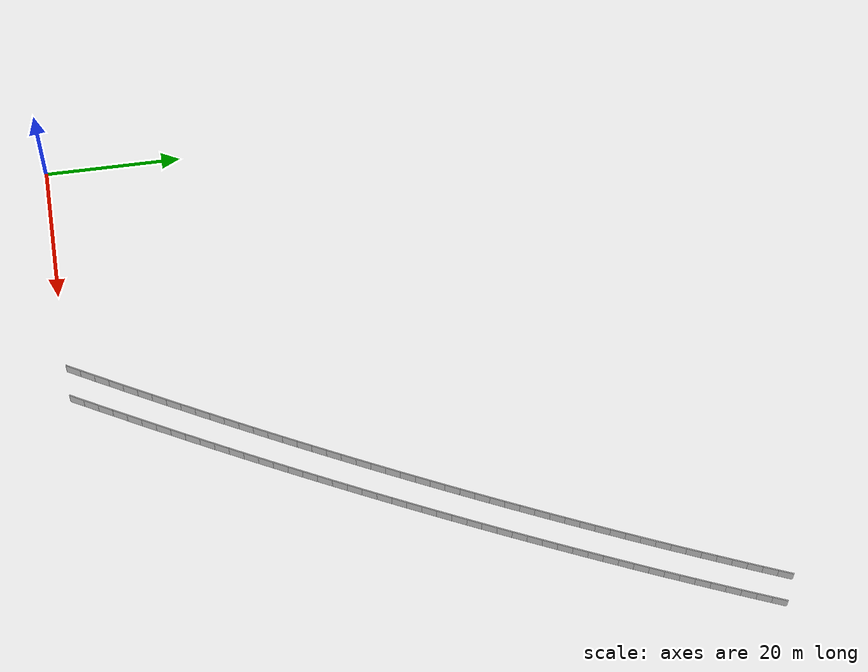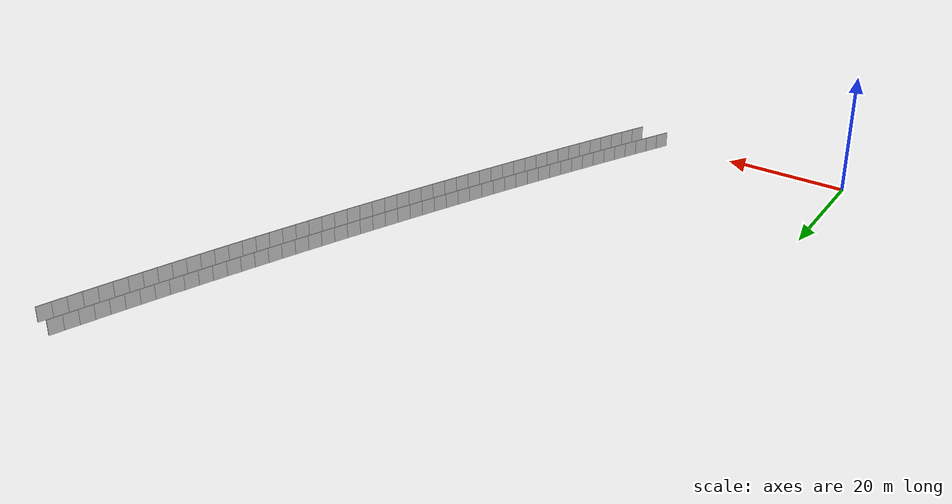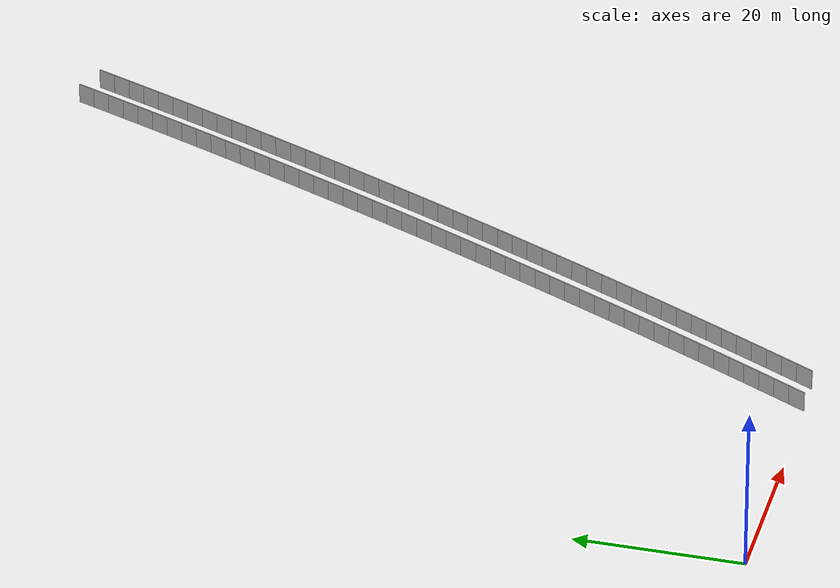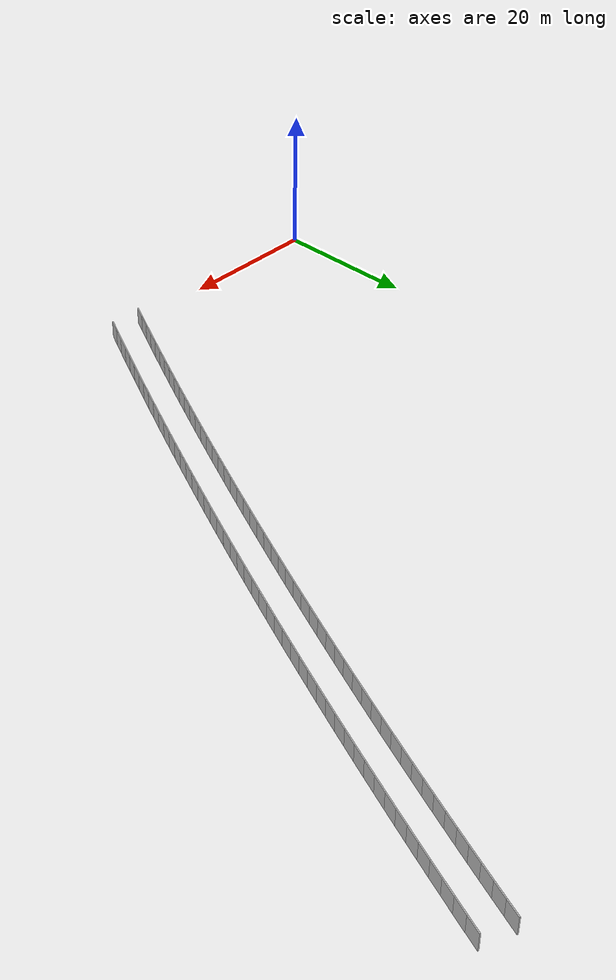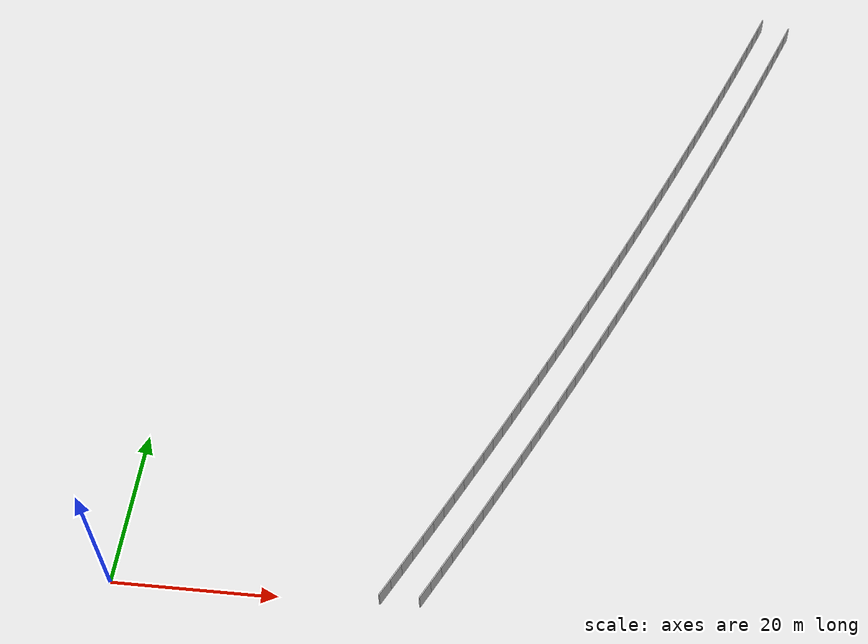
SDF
<sdf version="1.6">
 <model name="sps_2208">
  <static>1</static>
  <allow_auto_disable>0</allow_auto_disable>
  <link name="Wall4387">
   <collision name="collision"><geometry><box><size>2.25457 0.15 2.5</size></box></geometry></collision>
   <visual name="visual">
    <geometry><box><size>2.25457 0.15 2.5</size></box></geometry>
    <transparency>0.0</transparency>
   </visual>
   <pose>37.193 1.31227 1.25 0 -0 1.09524</pose>
  </link>
  <link name="Wall4388">
   <collision name="collision"><geometry><box><size>2.25454 0.15 2.5</size></box></geometry></collision>
   <visual name="visual">
    <geometry><box><size>2.25454 0.15 2.5</size></box></geometry>
    <transparency>0.0</transparency>
   </visual>
   <pose>38.2228 3.31789 1.25 0 -0 1.09763</pose>
  </link>
  <link name="Wall4389">
   <collision name="collision"><geometry><box><size>2.25488 0.15 2.5</size></box></geometry></collision>
   <visual name="visual">
    <geometry><box><size>2.25488 0.15 2.5</size></box></geometry>
    <transparency>0.0</transparency>
   </visual>
   <pose>39.2479 5.32609 1.25 0 -0 1.10002</pose>
  </link>
  <link name="Wall4390">
   <collision name="collision"><geometry><box><size>2.2546 0.15 2.5</size></box></geometry></collision>
   <visual name="visual">
    <geometry><box><size>2.2546 0.15 2.5</size></box></geometry>
    <transparency>0.0</transparency>
   </visual>
   <pose>40.2681 7.33678 1.25 0 -0 1.10241</pose>
  </link>
  <link name="Wall4391">
   <collision name="collision"><geometry><box><size>2.25444 0.15 2.5</size></box></geometry></collision>
   <visual name="visual">
    <geometry><box><size>2.25444 0.15 2.5</size></box></geometry>
    <transparency>0.0</transparency>
   </visual>
   <pose>41.2836 9.34968 1.25 0 -0 1.10478</pose>
  </link>
  <link name="Wall4392">
   <collision name="collision"><geometry><box><size>2.25468 0.15 2.5</size></box></geometry></collision>
   <visual name="visual">
    <geometry><box><size>2.25468 0.15 2.5</size></box></geometry>
    <transparency>0.0</transparency>
   </visual>
   <pose>42.2943 11.365 1.25 0 -0 1.1071</pose>
  </link>
  <link name="Wall4393">
   <collision name="collision"><geometry><box><size>2.25455 0.15 2.5</size></box></geometry></collision>
   <visual name="visual">
    <geometry><box><size>2.25455 0.15 2.5</size></box></geometry>
    <transparency>0.0</transparency>
   </visual>
   <pose>43.3002 13.3828 1.25 0 -0 1.10958</pose>
  </link>
  <link name="Wall4394">
   <collision name="collision"><geometry><box><size>2.25463 0.15 2.5</size></box></geometry></collision>
   <visual name="visual">
    <geometry><box><size>2.25463 0.15 2.5</size></box></geometry>
    <transparency>0.0</transparency>
   </visual>
   <pose>44.3011 15.403 1.25 0 -0 1.11196</pose>
  </link>
  <link name="Wall4395">
   <collision name="collision"><geometry><box><size>2.25482 0.15 2.5</size></box></geometry></collision>
   <visual name="visual">
    <geometry><box><size>2.25482 0.15 2.5</size></box></geometry>
    <transparency>0.0</transparency>
   </visual>
   <pose>45.2975 17.4256 1.25 0 -0 1.11417</pose>
  </link>
  <link name="Wall4396">
   <collision name="collision"><geometry><box><size>2.25451 0.15 2.5</size></box></geometry></collision>
   <visual name="visual">
    <geometry><box><size>2.25451 0.15 2.5</size></box></geometry>
    <transparency>0.0</transparency>
   </visual>
   <pose>46.2891 19.4505 1.25 0 -0 1.11667</pose>
  </link>
  <link name="Wall4397">
   <collision name="collision"><geometry><box><size>2.25389 0.15 2.5</size></box></geometry></collision>
   <visual name="visual">
    <geometry><box><size>2.25389 0.15 2.5</size></box></geometry>
    <transparency>0.0</transparency>
   </visual>
   <pose>47.2754 21.4775 1.25 0 -0 1.11921</pose>
  </link>
  <link name="Wall4398">
   <collision name="collision"><geometry><box><size>2.25458 0.15 2.5</size></box></geometry></collision>
   <visual name="visual">
    <geometry><box><size>2.25458 0.15 2.5</size></box></geometry>
    <transparency>0.0</transparency>
   </visual>
   <pose>48.257 23.5068 1.25 0 -0 1.12131</pose>
  </link>
  <link name="Wall4399">
   <collision name="collision"><geometry><box><size>2.2548 0.15 2.5</size></box></geometry></collision>
   <visual name="visual">
    <geometry><box><size>2.2548 0.15 2.5</size></box></geometry>
    <transparency>0.0</transparency>
   </visual>
   <pose>49.2342 25.5387 1.25 0 -0 1.12373</pose>
  </link>
  <link name="Wall4400">
   <collision name="collision"><geometry><box><size>2.25455 0.15 2.5</size></box></geometry></collision>
   <visual name="visual">
    <geometry><box><size>2.25455 0.15 2.5</size></box></geometry>
    <transparency>0.0</transparency>
   </visual>
   <pose>50.2064 27.573 1.25 0 -0 1.12623</pose>
  </link>
  <link name="Wall4401">
   <collision name="collision"><geometry><box><size>2.25473 0.15 2.5</size></box></geometry></collision>
   <visual name="visual">
    <geometry><box><size>2.25473 0.15 2.5</size></box></geometry>
    <transparency>0.0</transparency>
   </visual>
   <pose>51.1738 29.6096 1.25 0 -0 1.12852</pose>
  </link>
  <link name="Wall4402">
   <collision name="collision"><geometry><box><size>2.25456 0.15 2.5</size></box></geometry></collision>
   <visual name="visual">
    <geometry><box><size>2.25456 0.15 2.5</size></box></geometry>
    <transparency>0.0</transparency>
   </visual>
   <pose>52.1363 31.6485 1.25 0 -0 1.13097</pose>
  </link>
  <link name="Wall4403">
   <collision name="collision"><geometry><box><size>2.25485 0.15 2.5</size></box></geometry></collision>
   <visual name="visual">
    <geometry><box><size>2.25485 0.15 2.5</size></box></geometry>
    <transparency>0.0</transparency>
   </visual>
   <pose>53.094 33.6897 1.25 0 -0 1.13324</pose>
  </link>
  <link name="Wall4404">
   <collision name="collision"><geometry><box><size>2.25431 0.15 2.5</size></box></geometry></collision>
   <visual name="visual">
    <geometry><box><size>2.25431 0.15 2.5</size></box></geometry>
    <transparency>0.0</transparency>
   </visual>
   <pose>54.0469 35.733 1.25 0 -0 1.13561</pose>
  </link>
  <link name="Wall4405">
   <collision name="collision"><geometry><box><size>2.25486 0.15 2.5</size></box></geometry></collision>
   <visual name="visual">
    <geometry><box><size>2.25486 0.15 2.5</size></box></geometry>
    <transparency>0.0</transparency>
   </visual>
   <pose>54.9949 37.7786 1.25 0 -0 1.13805</pose>
  </link>
  <link name="Wall4406">
   <collision name="collision"><geometry><box><size>2.25474 0.15 2.5</size></box></geometry></collision>
   <visual name="visual">
    <geometry><box><size>2.25474 0.15 2.5</size></box></geometry>
    <transparency>0.0</transparency>
   </visual>
   <pose>55.9379 39.8267 1.25 0 -0 1.14049</pose>
  </link>
  <link name="Wall4407">
   <collision name="collision"><geometry><box><size>2.25434 0.15 2.5</size></box></geometry></collision>
   <visual name="visual">
    <geometry><box><size>2.25434 0.15 2.5</size></box></geometry>
    <transparency>0.0</transparency>
   </visual>
   <pose>56.876 41.8768 1.25 0 -0 1.14283</pose>
  </link>
  <link name="Wall4408">
   <collision name="collision"><geometry><box><size>2.25486 0.15 2.5</size></box></geometry></collision>
   <visual name="visual">
    <geometry><box><size>2.25486 0.15 2.5</size></box></geometry>
    <transparency>0.0</transparency>
   </visual>
   <pose>57.8094 43.9291 1.25 0 -0 1.14507</pose>
  </link>
  <link name="Wall4409">
   <collision name="collision"><geometry><box><size>2.25472 0.15 2.5</size></box></geometry></collision>
   <visual name="visual">
    <geometry><box><size>2.25472 0.15 2.5</size></box></geometry>
    <transparency>0.0</transparency>
   </visual>
   <pose>58.7381 45.9838 1.25 0 -0 1.14757</pose>
  </link>
  <link name="Wall4410">
   <collision name="collision"><geometry><box><size>2.25432 0.15 2.5</size></box></geometry></collision>
   <visual name="visual">
    <geometry><box><size>2.25432 0.15 2.5</size></box></geometry>
    <transparency>0.0</transparency>
   </visual>
   <pose>59.6616 48.0405 1.25 0 -0 1.14995</pose>
  </link>
  <link name="Wall4411">
   <collision name="collision"><geometry><box><size>2.25482 0.15 2.5</size></box></geometry></collision>
   <visual name="visual">
    <geometry><box><size>2.25482 0.15 2.5</size></box></geometry>
    <transparency>0.0</transparency>
   </visual>
   <pose>60.5803 50.0994 1.25 0 -0 1.15224</pose>
  </link>
  <link name="Wall4412">
   <collision name="collision"><geometry><box><size>2.25453 0.15 2.5</size></box></geometry></collision>
   <visual name="visual">
    <geometry><box><size>2.25453 0.15 2.5</size></box></geometry>
    <transparency>0.0</transparency>
   </visual>
   <pose>61.4941 52.1606 1.25 0 -0 1.15474</pose>
  </link>
  <link name="Wall4413">
   <collision name="collision"><geometry><box><size>2.25412 0.15 2.5</size></box></geometry></collision>
   <visual name="visual">
    <geometry><box><size>2.25412 0.15 2.5</size></box></geometry>
    <transparency>0.0</transparency>
   </visual>
   <pose>62.4027 54.2237 1.25 0 -0 1.15717</pose>
  </link>
  <link name="Wall4414">
   <collision name="collision"><geometry><box><size>2.25454 0.15 2.5</size></box></geometry></collision>
   <visual name="visual">
    <geometry><box><size>2.25454 0.15 2.5</size></box></geometry>
    <transparency>0.0</transparency>
   </visual>
   <pose>63.3065 56.2889 1.25 0 -0 1.15938</pose>
  </link>
  <link name="Wall4415">
   <collision name="collision"><geometry><box><size>2.25487 0.15 2.5</size></box></geometry></collision>
   <visual name="visual">
    <geometry><box><size>2.25487 0.15 2.5</size></box></geometry>
    <transparency>0.0</transparency>
   </visual>
   <pose>64.2056 58.3566 1.25 0 -0 1.16189</pose>
  </link>
  <link name="Wall4416">
   <collision name="collision"><geometry><box><size>2.25452 0.15 2.5</size></box></geometry></collision>
   <visual name="visual">
    <geometry><box><size>2.25452 0.15 2.5</size></box></geometry>
    <transparency>0.0</transparency>
   </visual>
   <pose>65.0998 60.4264 1.25 0 -0 1.1641</pose>
  </link>
  <link name="Wall4417">
   <collision name="collision"><geometry><box><size>2.25454 0.15 2.5</size></box></geometry></collision>
   <visual name="visual">
    <geometry><box><size>2.25454 0.15 2.5</size></box></geometry>
    <transparency>0.0</transparency>
   </visual>
   <pose>65.9891 62.4981 1.25 0 -0 1.16654</pose>
  </link>
  <link name="Wall4418">
   <collision name="collision"><geometry><box><size>2.2546 0.15 2.5</size></box></geometry></collision>
   <visual name="visual">
    <geometry><box><size>2.2546 0.15 2.5</size></box></geometry>
    <transparency>0.0</transparency>
   </visual>
   <pose>66.8733 64.572 1.25 0 -0 1.16897</pose>
  </link>
  <link name="Wall4419">
   <collision name="collision"><geometry><box><size>2.25476 0.15 2.5</size></box></geometry></collision>
   <visual name="visual">
    <geometry><box><size>2.25476 0.15 2.5</size></box></geometry>
    <transparency>0.0</transparency>
   </visual>
   <pose>67.7527 66.6481 1.25 0 -0 1.17129</pose>
  </link>
  <link name="Wall4420">
   <collision name="collision"><geometry><box><size>2.25462 0.15 2.5</size></box></geometry></collision>
   <visual name="visual">
    <geometry><box><size>2.25462 0.15 2.5</size></box></geometry>
    <transparency>0.0</transparency>
   </visual>
   <pose>68.6273 68.7263 1.25 0 -0 1.17368</pose>
  </link>
  <link name="Wall4421">
   <collision name="collision"><geometry><box><size>2.25461 0.15 2.5</size></box></geometry></collision>
   <visual name="visual">
    <geometry><box><size>2.25461 0.15 2.5</size></box></geometry>
    <transparency>0.0</transparency>
   </visual>
   <pose>69.4968 70.8065 1.25 0 -0 1.17608</pose>
  </link>
  <link name="Wall4422">
   <collision name="collision"><geometry><box><size>2.25466 0.15 2.5</size></box></geometry></collision>
   <visual name="visual">
    <geometry><box><size>2.25466 0.15 2.5</size></box></geometry>
    <transparency>0.0</transparency>
   </visual>
   <pose>70.3613 72.8888 1.25 0 -0 1.17849</pose>
  </link>
  <link name="Wall4423">
   <collision name="collision"><geometry><box><size>2.25444 0.15 2.5</size></box></geometry></collision>
   <visual name="visual">
    <geometry><box><size>2.25444 0.15 2.5</size></box></geometry>
    <transparency>0.0</transparency>
   </visual>
   <pose>71.2208 74.9731 1.25 0 -0 1.18085</pose>
  </link>
  <link name="Wall4424">
   <collision name="collision"><geometry><box><size>2.25465 0.15 2.5</size></box></geometry></collision>
   <visual name="visual">
    <geometry><box><size>2.25465 0.15 2.5</size></box></geometry>
    <transparency>0.0</transparency>
   </visual>
   <pose>72.0753 77.0594 1.25 0 -0 1.1832</pose>
  </link>
  <link name="Wall4425">
   <collision name="collision"><geometry><box><size>2.25472 0.15 2.5</size></box></geometry></collision>
   <visual name="visual">
    <geometry><box><size>2.25472 0.15 2.5</size></box></geometry>
    <transparency>0.0</transparency>
   </visual>
   <pose>72.9251 79.1478 1.25 0 -0 1.18549</pose>
  </link>
  <link name="Wall4426">
   <collision name="collision"><geometry><box><size>2.25459 0.15 2.5</size></box></geometry></collision>
   <visual name="visual">
    <geometry><box><size>2.25459 0.15 2.5</size></box></geometry>
    <transparency>0.0</transparency>
   </visual>
   <pose>73.77 81.2382 1.25 0 -0 1.18795</pose>
  </link>
  <link name="Wall4427">
   <collision name="collision"><geometry><box><size>2.25466 0.15 2.5</size></box></geometry></collision>
   <visual name="visual">
    <geometry><box><size>2.25466 0.15 2.5</size></box></geometry>
    <transparency>0.0</transparency>
   </visual>
   <pose>74.6098 83.3306 1.25 0 -0 1.19027</pose>
  </link>
  <link name="Wall4428">
   <collision name="collision"><geometry><box><size>2.25452 0.15 2.5</size></box></geometry></collision>
   <visual name="visual">
    <geometry><box><size>2.25452 0.15 2.5</size></box></geometry>
    <transparency>0.0</transparency>
   </visual>
   <pose>75.4444 85.425 1.25 0 -0 1.19284</pose>
  </link>
  <link name="Wall4429">
   <collision name="collision"><geometry><box><size>2.25423 0.15 2.5</size></box></geometry></collision>
   <visual name="visual">
    <geometry><box><size>2.25423 0.15 2.5</size></box></geometry>
    <transparency>0.0</transparency>
   </visual>
   <pose>76.2739 87.5212 1.25 0 -0 1.19515</pose>
  </link>
  <link name="Wall4430">
   <collision name="collision"><geometry><box><size>2.2547 0.15 2.5</size></box></geometry></collision>
   <visual name="visual">
    <geometry><box><size>2.2547 0.15 2.5</size></box></geometry>
    <transparency>0.0</transparency>
   </visual>
   <pose>77.0987 89.6194 1.25 0 -0 1.19744</pose>
  </link>
  <link name="Wall4431">
   <collision name="collision"><geometry><box><size>2.25481 0.15 2.5</size></box></geometry></collision>
   <visual name="visual">
    <geometry><box><size>2.25481 0.15 2.5</size></box></geometry>
    <transparency>0.0</transparency>
   </visual>
   <pose>77.9185 91.7198 1.25 0 -0 1.19984</pose>
  </link>
  <link name="Wall4432">
   <collision name="collision"><geometry><box><size>2.25462 0.15 2.5</size></box></geometry></collision>
   <visual name="visual">
    <geometry><box><size>2.25462 0.15 2.5</size></box></geometry>
    <transparency>0.0</transparency>
   </visual>
   <pose>78.7335 93.8221 1.25 0 -0 1.20216</pose>
  </link>
  <link name="Wall4433">
   <collision name="collision"><geometry><box><size>2.2545 0.15 2.5</size></box></geometry></collision>
   <visual name="visual">
    <geometry><box><size>2.2545 0.15 2.5</size></box></geometry>
    <transparency>0.0</transparency>
   </visual>
   <pose>79.5433 95.9262 1.25 0 -0 1.20463</pose>
  </link>
  <link name="Wall4434">
   <collision name="collision"><geometry><box><size>2.25477 0.15 2.5</size></box></geometry></collision>
   <visual name="visual">
    <geometry><box><size>2.25477 0.15 2.5</size></box></geometry>
    <transparency>0.0</transparency>
   </visual>
   <pose>80.348 98.0323 1.25 0 -0 1.20697</pose>
  </link>
  <link name="Wall6111">
   <collision name="collision"><geometry><box><size>2.24465 0.15 2.5</size></box></geometry></collision>
   <visual name="visual">
    <geometry><box><size>2.24465 0.15 2.5</size></box></geometry>
    <transparency>0.0</transparency>
   </visual>
   <pose>32.4831 1.21309 1.25 0 -0 1.0929</pose>
  </link>
  <link name="Wall6112">
   <collision name="collision"><geometry><box><size>2.24488 0.15 2.5</size></box></geometry></collision>
   <visual name="visual">
    <geometry><box><size>2.24488 0.15 2.5</size></box></geometry>
    <transparency>0.0</transparency>
   </visual>
   <pose>33.5131 3.20759 1.25 0 -0 1.09531</pose>
  </link>
  <link name="Wall6113">
   <collision name="collision"><geometry><box><size>2.24463 0.15 2.5</size></box></geometry></collision>
   <visual name="visual">
    <geometry><box><size>2.24463 0.15 2.5</size></box></geometry>
    <transparency>0.0</transparency>
   </visual>
   <pose>34.5384 5.20451 1.25 0 -0 1.0976</pose>
  </link>
  <link name="Wall6114">
   <collision name="collision"><geometry><box><size>2.245 0.15 2.5</size></box></geometry></collision>
   <visual name="visual">
    <geometry><box><size>2.245 0.15 2.5</size></box></geometry>
    <transparency>0.0</transparency>
   </visual>
   <pose>35.559 7.2039 1.25 0 -0 1.10004</pose>
  </link>
  <link name="Wall6115">
   <collision name="collision"><geometry><box><size>2.24475 0.15 2.5</size></box></geometry></collision>
   <visual name="visual">
    <geometry><box><size>2.24475 0.15 2.5</size></box></geometry>
    <transparency>0.0</transparency>
   </visual>
   <pose>36.5748 9.20579 1.25 0 -0 1.10242</pose>
  </link>
  <link name="Wall6116">
   <collision name="collision"><geometry><box><size>2.24486 0.15 2.5</size></box></geometry></collision>
   <visual name="visual">
    <geometry><box><size>2.24486 0.15 2.5</size></box></geometry>
    <transparency>0.0</transparency>
   </visual>
   <pose>37.5858 11.21 1.25 0 -0 1.10473</pose>
  </link>
  <link name="Wall6117">
   <collision name="collision"><geometry><box><size>2.2448 0.15 2.5</size></box></geometry></collision>
   <visual name="visual">
    <geometry><box><size>2.2448 0.15 2.5</size></box></geometry>
    <transparency>0.0</transparency>
   </visual>
   <pose>38.5922 13.2166 1.25 0 -0 1.10709</pose>
  </link>
  <link name="Wall6118">
   <collision name="collision"><geometry><box><size>2.24475 0.15 2.5</size></box></geometry></collision>
   <visual name="visual">
    <geometry><box><size>2.24475 0.15 2.5</size></box></geometry>
    <transparency>0.0</transparency>
   </visual>
   <pose>39.5938 15.2256 1.25 0 -0 1.10957</pose>
  </link>
  <link name="Wall6119">
   <collision name="collision"><geometry><box><size>2.24472 0.15 2.5</size></box></geometry></collision>
   <visual name="visual">
    <geometry><box><size>2.24472 0.15 2.5</size></box></geometry>
    <transparency>0.0</transparency>
   </visual>
   <pose>40.5905 17.2369 1.25 0 -0 1.11187</pose>
  </link>
  <link name="Wall6120">
   <collision name="collision"><geometry><box><size>2.24483 0.15 2.5</size></box></geometry></collision>
   <visual name="visual">
    <geometry><box><size>2.24483 0.15 2.5</size></box></geometry>
    <transparency>0.0</transparency>
   </visual>
   <pose>41.5825 19.2506 1.25 0 -0 1.11429</pose>
  </link>
  <link name="Wall6121">
   <collision name="collision"><geometry><box><size>2.2442 0.15 2.5</size></box></geometry></collision>
   <visual name="visual">
    <geometry><box><size>2.2442 0.15 2.5</size></box></geometry>
    <transparency>0.0</transparency>
   </visual>
   <pose>42.5694 21.2665 1.25 0 -0 1.11678</pose>
  </link>
  <link name="Wall6122">
   <collision name="collision"><geometry><box><size>2.2448 0.15 2.5</size></box></geometry></collision>
   <visual name="visual">
    <geometry><box><size>2.2448 0.15 2.5</size></box></geometry>
    <transparency>0.0</transparency>
   </visual>
   <pose>43.5515 23.2847 1.25 0 -0 1.11903</pose>
  </link>
  <link name="Wall6123">
   <collision name="collision"><geometry><box><size>2.24476 0.15 2.5</size></box></geometry></collision>
   <visual name="visual">
    <geometry><box><size>2.24476 0.15 2.5</size></box></geometry>
    <transparency>0.0</transparency>
   </visual>
   <pose>44.529 25.3055 1.25 0 -0 1.1215</pose>
  </link>
  <link name="Wall6124">
   <collision name="collision"><geometry><box><size>2.24481 0.15 2.5</size></box></geometry></collision>
   <visual name="visual">
    <geometry><box><size>2.24481 0.15 2.5</size></box></geometry>
    <transparency>0.0</transparency>
   </visual>
   <pose>45.5016 27.3286 1.25 0 -0 1.12377</pose>
  </link>
  <link name="Wall6125">
   <collision name="collision"><geometry><box><size>2.24469 0.15 2.5</size></box></geometry></collision>
   <visual name="visual">
    <geometry><box><size>2.24469 0.15 2.5</size></box></geometry>
    <transparency>0.0</transparency>
   </visual>
   <pose>46.4697 29.3539 1.25 0 -0 1.1261</pose>
  </link>
  <link name="Wall6126">
   <collision name="collision"><geometry><box><size>2.24496 0.15 2.5</size></box></geometry></collision>
   <visual name="visual">
    <geometry><box><size>2.24496 0.15 2.5</size></box></geometry>
    <transparency>0.0</transparency>
   </visual>
   <pose>47.4329 31.3816 1.25 0 -0 1.12856</pose>
  </link>
  <link name="Wall6127">
   <collision name="collision"><geometry><box><size>2.24467 0.15 2.5</size></box></geometry></collision>
   <visual name="visual">
    <geometry><box><size>2.24467 0.15 2.5</size></box></geometry>
    <transparency>0.0</transparency>
   </visual>
   <pose>48.3911 33.4116 1.25 0 -0 1.13094</pose>
  </link>
  <link name="Wall6128">
   <collision name="collision"><geometry><box><size>2.24488 0.15 2.5</size></box></geometry></collision>
   <visual name="visual">
    <geometry><box><size>2.24488 0.15 2.5</size></box></geometry>
    <transparency>0.0</transparency>
   </visual>
   <pose>49.3447 35.4438 1.25 0 -0 1.13323</pose>
  </link>
  <link name="Wall6129">
   <collision name="collision"><geometry><box><size>2.24457 0.15 2.5</size></box></geometry></collision>
   <visual name="visual">
    <geometry><box><size>2.24457 0.15 2.5</size></box></geometry>
    <transparency>0.0</transparency>
   </visual>
   <pose>50.2934 37.4782 1.25 0 -0 1.13566</pose>
  </link>
  <link name="Wall6130">
   <collision name="collision"><geometry><box><size>2.24495 0.15 2.5</size></box></geometry></collision>
   <visual name="visual">
    <geometry><box><size>2.24495 0.15 2.5</size></box></geometry>
    <transparency>0.0</transparency>
   </visual>
   <pose>51.2371 39.5149 1.25 0 -0 1.13807</pose>
  </link>
  <link name="Wall6131">
   <collision name="collision"><geometry><box><size>2.24493 0.15 2.5</size></box></geometry></collision>
   <visual name="visual">
    <geometry><box><size>2.24493 0.15 2.5</size></box></geometry>
    <transparency>0.0</transparency>
   </visual>
   <pose>52.1761 41.554 1.25 0 -0 1.14043</pose>
  </link>
  <link name="Wall6132">
   <collision name="collision"><geometry><box><size>2.24472 0.15 2.5</size></box></geometry></collision>
   <visual name="visual">
    <geometry><box><size>2.24472 0.15 2.5</size></box></geometry>
    <transparency>0.0</transparency>
   </visual>
   <pose>53.1103 43.5952 1.25 0 -0 1.14272</pose>
  </link>
  <link name="Wall6133">
   <collision name="collision"><geometry><box><size>2.24471 0.15 2.5</size></box></geometry></collision>
   <visual name="visual">
    <geometry><box><size>2.24471 0.15 2.5</size></box></geometry>
    <transparency>0.0</transparency>
   </visual>
   <pose>54.0397 45.6385 1.25 0 -0 1.14517</pose>
  </link>
  <link name="Wall6134">
   <collision name="collision"><geometry><box><size>2.24483 0.15 2.5</size></box></geometry></collision>
   <visual name="visual">
    <geometry><box><size>2.24483 0.15 2.5</size></box></geometry>
    <transparency>0.0</transparency>
   </visual>
   <pose>54.9641 47.6841 1.25 0 -0 1.14755</pose>
  </link>
  <link name="Wall6135">
   <collision name="collision"><geometry><box><size>2.24492 0.15 2.5</size></box></geometry></collision>
   <visual name="visual">
    <geometry><box><size>2.24492 0.15 2.5</size></box></geometry>
    <transparency>0.0</transparency>
   </visual>
   <pose>55.8837 49.732 1.25 0 -0 1.14992</pose>
  </link>
  <link name="Wall6136">
   <collision name="collision"><geometry><box><size>2.24474 0.15 2.5</size></box></geometry></collision>
   <visual name="visual">
    <geometry><box><size>2.24474 0.15 2.5</size></box></geometry>
    <transparency>0.0</transparency>
   </visual>
   <pose>56.7984 51.782 1.25 0 -0 1.1523</pose>
  </link>
  <link name="Wall6137">
   <collision name="collision"><geometry><box><size>2.24464 0.15 2.5</size></box></geometry></collision>
   <visual name="visual">
    <geometry><box><size>2.24464 0.15 2.5</size></box></geometry>
    <transparency>0.0</transparency>
   </visual>
   <pose>57.7081 53.8341 1.25 0 -0 1.15475</pose>
  </link>
  <link name="Wall6138">
   <collision name="collision"><geometry><box><size>2.24433 0.15 2.5</size></box></geometry></collision>
   <visual name="visual">
    <geometry><box><size>2.24433 0.15 2.5</size></box></geometry>
    <transparency>0.0</transparency>
   </visual>
   <pose>58.6128 55.8882 1.25 0 -0 1.15709</pose>
  </link>
  <link name="Wall6139">
   <collision name="collision"><geometry><box><size>2.24487 0.15 2.5</size></box></geometry></collision>
   <visual name="visual">
    <geometry><box><size>2.24487 0.15 2.5</size></box></geometry>
    <transparency>0.0</transparency>
   </visual>
   <pose>59.5127 57.9445 1.25 0 -0 1.15946</pose>
  </link>
  <link name="Wall6140">
   <collision name="collision"><geometry><box><size>2.24482 0.15 2.5</size></box></geometry></collision>
   <visual name="visual">
    <geometry><box><size>2.24482 0.15 2.5</size></box></geometry>
    <transparency>0.0</transparency>
   </visual>
   <pose>60.4079 60.0031 1.25 0 -0 1.16176</pose>
  </link>
  <link name="Wall6141">
   <collision name="collision"><geometry><box><size>2.2447 0.15 2.5</size></box></geometry></collision>
   <visual name="visual">
    <geometry><box><size>2.2447 0.15 2.5</size></box></geometry>
    <transparency>0.0</transparency>
   </visual>
   <pose>61.2981 62.0638 1.25 0 -0 1.16428</pose>
  </link>
  <link name="Wall6142">
   <collision name="collision"><geometry><box><size>2.2448 0.15 2.5</size></box></geometry></collision>
   <visual name="visual">
    <geometry><box><size>2.2448 0.15 2.5</size></box></geometry>
    <transparency>0.0</transparency>
   </visual>
   <pose>62.1833 64.1266 1.25 0 -0 1.16652</pose>
  </link>
  <link name="Wall6143">
   <collision name="collision"><geometry><box><size>2.2448 0.15 2.5</size></box></geometry></collision>
   <visual name="visual">
    <geometry><box><size>2.2448 0.15 2.5</size></box></geometry>
    <transparency>0.0</transparency>
   </visual>
   <pose>63.0638 66.1915 1.25 0 -0 1.16895</pose>
  </link>
  <link name="Wall6144">
   <collision name="collision"><geometry><box><size>2.24473 0.15 2.5</size></box></geometry></collision>
   <visual name="visual">
    <geometry><box><size>2.24473 0.15 2.5</size></box></geometry>
    <transparency>0.0</transparency>
   </visual>
   <pose>63.9394 68.2585 1.25 0 -0 1.17132</pose>
  </link>
  <link name="Wall6145">
   <collision name="collision"><geometry><box><size>2.24469 0.15 2.5</size></box></geometry></collision>
   <visual name="visual">
    <geometry><box><size>2.24469 0.15 2.5</size></box></geometry>
    <transparency>0.0</transparency>
   </visual>
   <pose>64.81 70.3275 1.25 0 -0 1.17368</pose>
  </link>
  <link name="Wall6146">
   <collision name="collision"><geometry><box><size>2.24488 0.15 2.5</size></box></geometry></collision>
   <visual name="visual">
    <geometry><box><size>2.24488 0.15 2.5</size></box></geometry>
    <transparency>0.0</transparency>
   </visual>
   <pose>65.6757 72.3986 1.25 0 -0 1.17601</pose>
  </link>
  <link name="Wall6147">
   <collision name="collision"><geometry><box><size>2.2447 0.15 2.5</size></box></geometry></collision>
   <visual name="visual">
    <geometry><box><size>2.2447 0.15 2.5</size></box></geometry>
    <transparency>0.0</transparency>
   </visual>
   <pose>66.5366 74.4718 1.25 0 -0 1.17848</pose>
  </link>
  <link name="Wall6148">
   <collision name="collision"><geometry><box><size>2.24485 0.15 2.5</size></box></geometry></collision>
   <visual name="visual">
    <geometry><box><size>2.24485 0.15 2.5</size></box></geometry>
    <transparency>0.0</transparency>
   </visual>
   <pose>67.3924 76.547 1.25 0 -0 1.18074</pose>
  </link>
  <link name="Wall6149">
   <collision name="collision"><geometry><box><size>2.24479 0.15 2.5</size></box></geometry></collision>
   <visual name="visual">
    <geometry><box><size>2.24479 0.15 2.5</size></box></geometry>
    <transparency>0.0</transparency>
   </visual>
   <pose>68.2433 78.6243 1.25 0 -0 1.18332</pose>
  </link>
  <link name="Wall6150">
   <collision name="collision"><geometry><box><size>2.24476 0.15 2.5</size></box></geometry></collision>
   <visual name="visual">
    <geometry><box><size>2.24476 0.15 2.5</size></box></geometry>
    <transparency>0.0</transparency>
   </visual>
   <pose>69.0893 80.7036 1.25 0 -0 1.18551</pose>
  </link>
  <link name="Wall6151">
   <collision name="collision"><geometry><box><size>2.2449 0.15 2.5</size></box></geometry></collision>
   <visual name="visual">
    <geometry><box><size>2.2449 0.15 2.5</size></box></geometry>
    <transparency>0.0</transparency>
   </visual>
   <pose>69.9304 82.7849 1.25 0 -0 1.18797</pose>
  </link>
  <link name="Wall6152">
   <collision name="collision"><geometry><box><size>2.24459 0.15 2.5</size></box></geometry></collision>
   <visual name="visual">
    <geometry><box><size>2.24459 0.15 2.5</size></box></geometry>
    <transparency>0.0</transparency>
   </visual>
   <pose>70.7664 84.8681 1.25 0 -0 1.19029</pose>
  </link>
  <link name="Wall6153">
   <collision name="collision"><geometry><box><size>2.24439 0.15 2.5</size></box></geometry></collision>
   <visual name="visual">
    <geometry><box><size>2.24439 0.15 2.5</size></box></geometry>
    <transparency>0.0</transparency>
   </visual>
   <pose>71.5973 86.9531 1.25 0 -0 1.19286</pose>
  </link>
  <link name="Wall6154">
   <collision name="collision"><geometry><box><size>2.24481 0.15 2.5</size></box></geometry></collision>
   <visual name="visual">
    <geometry><box><size>2.24481 0.15 2.5</size></box></geometry>
    <transparency>0.0</transparency>
   </visual>
   <pose>72.4233 89.0402 1.25 0 -0 1.19504</pose>
  </link>
  <link name="Wall6155">
   <collision name="collision"><geometry><box><size>2.24465 0.15 2.5</size></box></geometry></collision>
   <visual name="visual">
    <geometry><box><size>2.24465 0.15 2.5</size></box></geometry>
    <transparency>0.0</transparency>
   </visual>
   <pose>73.2447 91.1293 1.25 0 -0 1.19738</pose>
  </link>
  <link name="Wall6156">
   <collision name="collision"><geometry><box><size>2.24491 0.15 2.5</size></box></geometry></collision>
   <visual name="visual">
    <geometry><box><size>2.24491 0.15 2.5</size></box></geometry>
    <transparency>0.0</transparency>
   </visual>
   <pose>74.061 93.2204 1.25 0 -0 1.19985</pose>
  </link>
  <link name="Wall6157">
   <collision name="collision"><geometry><box><size>2.24476 0.15 2.5</size></box></geometry></collision>
   <visual name="visual">
    <geometry><box><size>2.24476 0.15 2.5</size></box></geometry>
    <transparency>0.0</transparency>
   </visual>
   <pose>74.8722 95.3135 1.25 0 -0 1.20221</pose>
  </link>
  <link name="Wall6158">
   <collision name="collision"><geometry><box><size>2.24479 0.15 2.5</size></box></geometry></collision>
   <visual name="visual">
    <geometry><box><size>2.24479 0.15 2.5</size></box></geometry>
    <transparency>0.0</transparency>
   </visual>
   <pose>75.6785 97.4085 1.25 0 -0 1.20466</pose>
  </link>
  <link name="Wall6159">
   <collision name="collision"><geometry><box><size>2.24471 0.15 2.5</size></box></geometry></collision>
   <visual name="visual">
    <geometry><box><size>2.24471 0.15 2.5</size></box></geometry>
    <transparency>0.0</transparency>
   </visual>
   <pose>76.4797 99.5054 1.25 0 -0 1.20698</pose>
  </link>
 </model>
</sdf>
